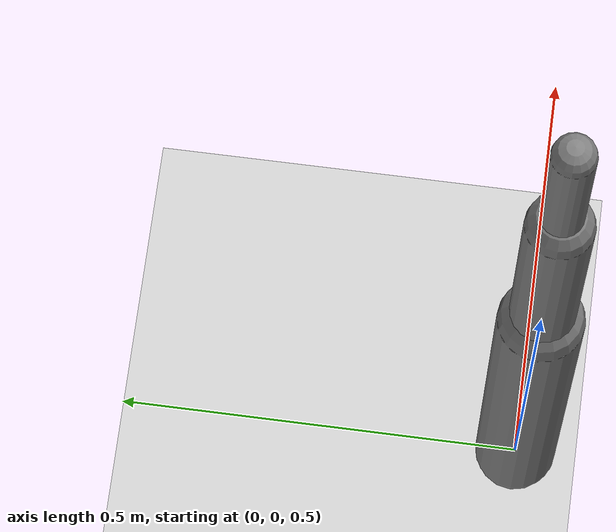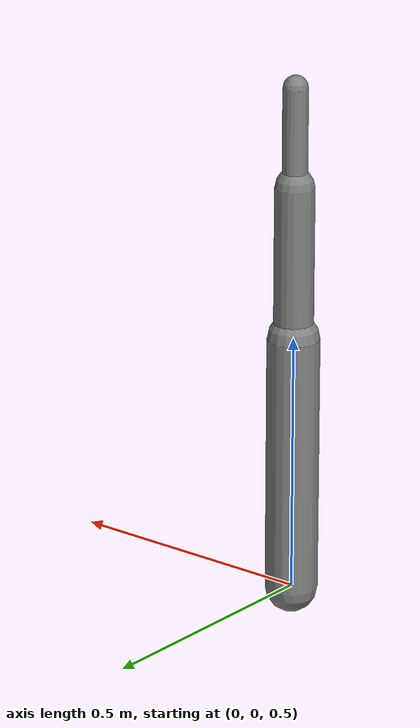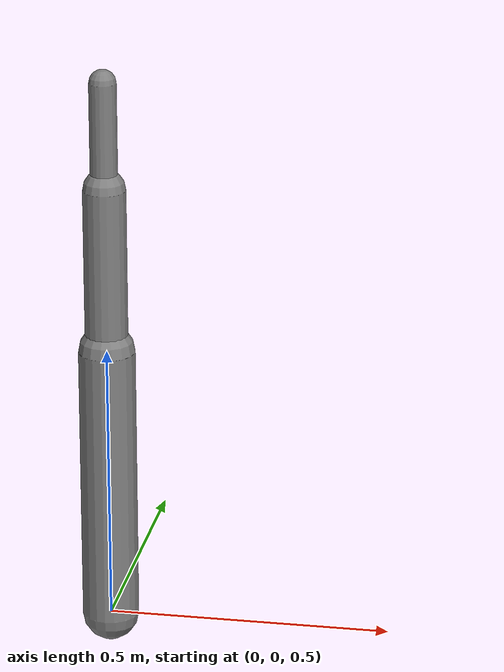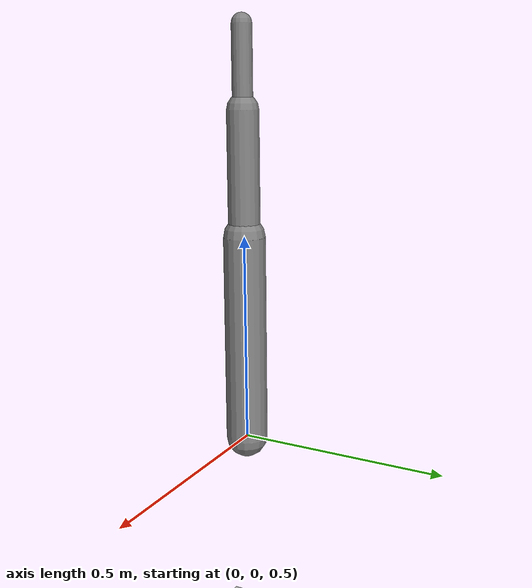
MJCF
<?xml version='1.0' encoding='UTF-8'?>
<mujoco model="RobotModel">
  <option gravity="0 0 -9.81" timestep="0.002" solver="CG" iterations="500" integrator="Euler"/>
  <worldbody>
    <geom name="Floor" type="plane" size="10 10 0.1" pos="0 0 0" rgba="0.8 0.8 0.8 1"/>
    <body name="Limb0" pos="0 0 0.5">
      <geom type="capsule" fromto="0 0 0 0 0 0.5" size="0.05" density="1000" contype="0" conaffinity="0"/>
      <body name="Limb0_c5b90673" pos="0 0 0.5">
        <geom type="capsule" fromto="0 0 0 0 0 0.295925371211956" size="0.03775349187773319" density="800" contype="0" conaffinity="0"/>
        <body name="Limb1_c5b90673" pos="0 0 0.295925371211956">
          <geom type="capsule" fromto="0 0 0 0 0 0.19123093989486367" size="0.023923894600538308" density="800" contype="0" conaffinity="0"/>
          <joint name="Joint_Limb0_c5b90673_Limb1_c5b90673_0" type="hinge" axis="1 0 0" range="-60 60"/>
        </body>
        <joint name="Joint_Limb0_Limb0_c5b90673_0" type="hinge" axis="1 0 0" range="-60 60"/>
      </body>
    </body>
  </worldbody>
  <actuator>
    <position name="position_Actuator_Joint_Limb0_Limb0_c5b90673_0" joint="Joint_Limb0_Limb0_c5b90673_0" gear="1.0"/>
    <position name="position_Actuator_Joint_Limb0_c5b90673_Limb1_c5b90673_0" joint="Joint_Limb0_c5b90673_Limb1_c5b90673_0" gear="1.0"/>
  </actuator>
</mujoco>
